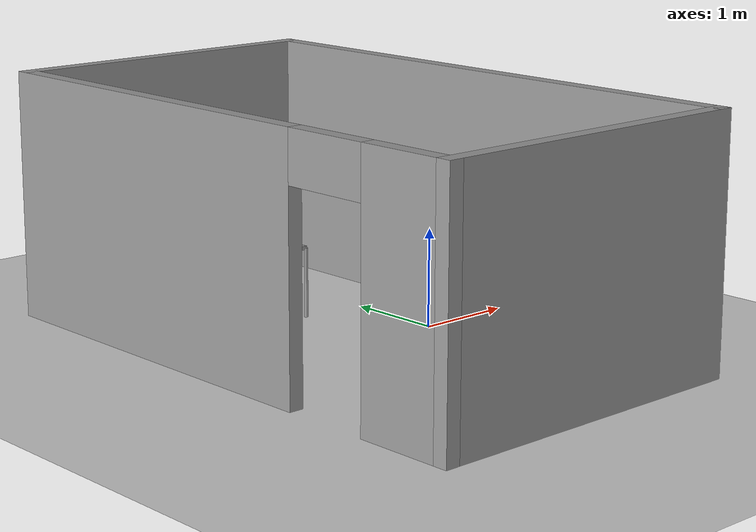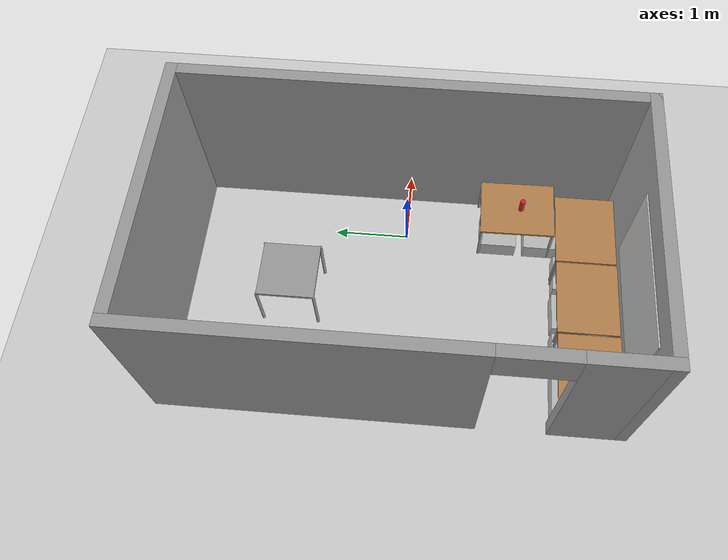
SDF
<sdf version="1.7">
 <world name="default">
  <light name="sun" type="directional">
   <pose>0 0 10 0 -0 0</pose>
   <diffuse>0.8 0.8 0.8 1</diffuse>
   <specular>0.2 0.2 0.2 1</specular>
   <attenuation>
    <range>1000</range>
    <constant>0.9</constant>
    <linear>0.01</linear>
    <quadratic>0.001</quadratic>
   </attenuation>
   <direction>-0.5 0.1 -0.9</direction>
   <spot><inner_angle>0</inner_angle><outer_angle>0</outer_angle><falloff>0</falloff></spot>
  </light>
  <model name="ground_plane">
   <static>1</static>
   <link name="link">
    <collision name="collision">
     <geometry><plane><normal>0 0 1</normal><size>100 100</size></plane></geometry>
     <surface>
      <contact><collide_bitmask>65535</collide_bitmask></contact>
      <friction><ode><mu>100</mu><mu2>50</mu2></ode></friction>
     </surface>
    </collision>
    <visual name="visual">
     <cast_shadows>0</cast_shadows>
     <geometry><plane><normal>0 0 1</normal><size>100 100</size></plane></geometry>
     <material>
      <script><uri>file://media/materials/scripts/gazebo.material</uri><name>Gazebo/Grey</name></script>
     </material>
    </visual>
   </link>
  </model>
  <gravity>0 0 -9.8</gravity>
  <magnetic_field>6e-06 2.3e-05 -4.2e-05</magnetic_field>
  <atmosphere type="adiabatic"/>
  <physics type="ode">
   <max_step_size>0.001</max_step_size>
   <real_time_factor>1</real_time_factor>
   <real_time_update_rate>1000</real_time_update_rate>
  </physics>
  <scene><ambient>0.4 0.4 0.4 1</ambient><background>0.7 0.7 0.7 1</background><shadows>1</shadows></scene>
  <spherical_coordinates>
   <surface_model>EARTH_WGS84</surface_model>
   <latitude_deg>0</latitude_deg>
   <longitude_deg>0</longitude_deg>
   <elevation>0</elevation>
   <heading_deg>0</heading_deg>
  </spherical_coordinates>
  <model name="contour_labo_3it_0">
   <pose>-0.967791 0.026787 0 0 -0 0</pose>
   <link name="Wall_52">
    <collision name="Wall_52_Collision">
     <geometry><box><size>3.5 0.15 2.5</size></box></geometry>
     <pose>0 0 1.25 0 -0 0</pose>
    </collision>
    <visual name="Wall_52_Visual">
     <pose>0 0 1.25 0 -0 0</pose>
     <geometry><box><size>3.5 0.15 2.5</size></box></geometry>
     <material>
      <script><uri>file://media/materials/scripts/gazebo.material</uri><name>Gazebo/Grey</name></script>
      <ambient>1 1 1 1</ambient>
     </material>
     <meta><layer>0</layer></meta>
    </visual>
    <pose>0 -2.925 0 0 -0 3.14159</pose>
   </link>
   <link name="Wall_53">
    <pose>-1.675 0 0 0 -0 1.5708</pose>
    <visual name="Wall_53_Visual_0">
     <pose>-2.49728 0 1.25 0 -0 0</pose>
     <geometry><box><size>1.00545 0.15 2.5</size></box></geometry>
     <material>
      <script><uri>file://media/materials/scripts/gazebo.material</uri><name>Gazebo/Grey</name></script>
      <ambient>1 1 1 1</ambient>
     </material>
     <meta><layer>0</layer></meta>
    </visual>
    <collision name="Wall_53_Collision_0">
     <geometry><box><size>1.00545 0.15 2.5</size></box></geometry>
     <pose>-2.49728 0 1.25 0 -0 0</pose>
    </collision>
    <visual name="Wall_53_Visual_1">
     <pose>0.952724 0 1.25 0 -0 0</pose>
     <geometry><box><size>4.09455 0.15 2.5</size></box></geometry>
     <material>
      <script><uri>file://media/materials/scripts/gazebo.material</uri><name>Gazebo/Grey</name></script>
      <ambient>1 1 1 1</ambient>
     </material>
     <meta><layer>0</layer></meta>
    </visual>
    <collision name="Wall_53_Collision_1">
     <geometry><box><size>4.09455 0.15 2.5</size></box></geometry>
     <pose>0.952724 0 1.25 0 -0 0</pose>
    </collision>
    <visual name="Wall_53_Visual_2">
     <pose>-1.54455 0 2.25 0 -0 0</pose>
     <geometry><box><size>0.9 0.15 0.5</size></box></geometry>
     <material>
      <script><uri>file://media/materials/scripts/gazebo.material</uri><name>Gazebo/Grey</name></script>
      <ambient>1 1 1 1</ambient>
     </material>
     <meta><layer>0</layer></meta>
    </visual>
    <collision name="Wall_53_Collision_2">
     <geometry><box><size>0.9 0.15 0.5</size></box></geometry>
     <pose>-1.54455 0 2.25 0 -0 0</pose>
    </collision>
   </link>
   <link name="Wall_54">
    <collision name="Wall_54_Collision">
     <geometry><box><size>3.5 0.15 2.5</size></box></geometry>
     <pose>0 0 1.25 0 -0 0</pose>
    </collision>
    <visual name="Wall_54_Visual">
     <pose>0 0 1.25 0 -0 0</pose>
     <geometry><box><size>3.5 0.15 2.5</size></box></geometry>
     <material>
      <script><uri>file://media/materials/scripts/gazebo.material</uri><name>Gazebo/Grey</name></script>
      <ambient>1 1 1 1</ambient>
     </material>
     <meta><layer>0</layer></meta>
    </visual>
    <pose>0 2.925 0 0 -0 0</pose>
   </link>
   <link name="Wall_55">
    <collision name="Wall_55_Collision">
     <geometry><box><size>6 0.15 2.5</size></box></geometry>
     <pose>0 0 1.25 0 -0 0</pose>
    </collision>
    <visual name="Wall_55_Visual">
     <pose>0 0 1.25 0 -0 0</pose>
     <geometry><box><size>6 0.15 2.5</size></box></geometry>
     <material>
      <script><uri>file://media/materials/scripts/gazebo.material</uri><name>Gazebo/Grey</name></script>
      <ambient>1 1 1 1</ambient>
     </material>
     <meta><layer>0</layer></meta>
    </visual>
    <pose>1.675 0 0 0 -0 -1.5708</pose>
   </link>
   <static>1</static>
  </model>
  <model name="table_0">
   <static>1</static>
   <link name="link">
    <collision name="surface">
     <pose>0 0 0.6 0 -0 0</pose>
     <geometry><box><size>1 0.8 0.03</size></box></geometry>
    </collision>
    <visual name="visual1">
     <pose>0 0 0.6 0 -0 0</pose>
     <geometry><box><size>1 0.8 0.03</size></box></geometry>
     <material>
      <script><uri>file://media/materials/scripts/gazebo.material</uri><name>Gazebo/Wood</name></script>
     </material>
    </visual>
    <collision name="front_left_leg">
     <pose>0.48 0.38 0.3 0 -0 0</pose>
     <geometry><cylinder><radius>0.02</radius><length>0.6</length></cylinder></geometry>
    </collision>
    <visual name="front_left_leg">
     <pose>0.48 0.38 0.3 0 -0 0</pose>
     <geometry><cylinder><radius>0.02</radius><length>0.6</length></cylinder></geometry>
     <material>
      <script><uri>file://media/materials/scripts/gazebo.material</uri><name>Gazebo/Grey</name></script>
     </material>
    </visual>
    <collision name="front_right_leg">
     <pose>0.48 -0.38 0.3 0 -0 0</pose>
     <geometry><cylinder><radius>0.02</radius><length>0.6</length></cylinder></geometry>
    </collision>
    <visual name="front_right_leg">
     <pose>0.48 -0.38 0.3 0 -0 0</pose>
     <geometry><cylinder><radius>0.02</radius><length>0.6</length></cylinder></geometry>
     <material>
      <script><uri>file://media/materials/scripts/gazebo.material</uri><name>Gazebo/Grey</name></script>
     </material>
    </visual>
    <collision name="back_right_leg">
     <pose>-0.48 -0.38 0.3 0 -0 0</pose>
     <geometry><cylinder><radius>0.02</radius><length>0.6</length></cylinder></geometry>
    </collision>
    <visual name="back_right_leg">
     <pose>-0.48 -0.38 0.3 0 -0 0</pose>
     <geometry><cylinder><radius>0.02</radius><length>0.6</length></cylinder></geometry>
     <material>
      <script><uri>file://media/materials/scripts/gazebo.material</uri><name>Gazebo/Grey</name></script>
     </material>
    </visual>
    <collision name="back_left_leg">
     <pose>-0.48 0.38 0.3 0 -0 0</pose>
     <geometry><cylinder><radius>0.02</radius><length>0.6</length></cylinder></geometry>
    </collision>
    <visual name="back_left_leg">
     <pose>-0.48 0.38 0.3 0 -0 0</pose>
     <geometry><cylinder><radius>0.02</radius><length>0.6</length></cylinder></geometry>
     <material>
      <script><uri>file://media/materials/scripts/gazebo.material</uri><name>Gazebo/Grey</name></script>
     </material>
    </visual>
    <velocity_decay><linear>0</linear><angular>0</angular></velocity_decay>
   </link>
   <pose>-2.08712 -2.42518 0 0 -0 0</pose>
  </model>
  <model name="table_1">
   <static>1</static>
   <link name="link">
    <collision name="surface">
     <pose>0 0 0.6 0 -0 0</pose>
     <geometry><box><size>1 0.8 0.03</size></box></geometry>
    </collision>
    <visual name="visual1">
     <pose>0 0 0.6 0 -0 0</pose>
     <geometry><box><size>1 0.8 0.03</size></box></geometry>
     <material>
      <script><uri>file://media/materials/scripts/gazebo.material</uri><name>Gazebo/Wood</name></script>
     </material>
    </visual>
    <collision name="front_left_leg">
     <pose>0.48 0.38 0.3 0 -0 0</pose>
     <geometry><cylinder><radius>0.02</radius><length>0.6</length></cylinder></geometry>
    </collision>
    <visual name="front_left_leg">
     <pose>0.48 0.38 0.3 0 -0 0</pose>
     <geometry><cylinder><radius>0.02</radius><length>0.6</length></cylinder></geometry>
     <material>
      <script><uri>file://media/materials/scripts/gazebo.material</uri><name>Gazebo/Grey</name></script>
     </material>
    </visual>
    <collision name="front_right_leg">
     <pose>0.48 -0.38 0.3 0 -0 0</pose>
     <geometry><cylinder><radius>0.02</radius><length>0.6</length></cylinder></geometry>
    </collision>
    <visual name="front_right_leg">
     <pose>0.48 -0.38 0.3 0 -0 0</pose>
     <geometry><cylinder><radius>0.02</radius><length>0.6</length></cylinder></geometry>
     <material>
      <script><uri>file://media/materials/scripts/gazebo.material</uri><name>Gazebo/Grey</name></script>
     </material>
    </visual>
    <collision name="back_right_leg">
     <pose>-0.48 -0.38 0.3 0 -0 0</pose>
     <geometry><cylinder><radius>0.02</radius><length>0.6</length></cylinder></geometry>
    </collision>
    <visual name="back_right_leg">
     <pose>-0.48 -0.38 0.3 0 -0 0</pose>
     <geometry><cylinder><radius>0.02</radius><length>0.6</length></cylinder></geometry>
     <material>
      <script><uri>file://media/materials/scripts/gazebo.material</uri><name>Gazebo/Grey</name></script>
     </material>
    </visual>
    <collision name="back_left_leg">
     <pose>-0.48 0.38 0.3 0 -0 0</pose>
     <geometry><cylinder><radius>0.02</radius><length>0.6</length></cylinder></geometry>
    </collision>
    <visual name="back_left_leg">
     <pose>-0.48 0.38 0.3 0 -0 0</pose>
     <geometry><cylinder><radius>0.02</radius><length>0.6</length></cylinder></geometry>
     <material>
      <script><uri>file://media/materials/scripts/gazebo.material</uri><name>Gazebo/Grey</name></script>
     </material>
    </visual>
    <velocity_decay><linear>0</linear><angular>0</angular></velocity_decay>
   </link>
   <pose>-1.06662 -2.41947 0 0 -0 0</pose>
  </model>
  <model name="table_2">
   <static>1</static>
   <link name="link">
    <collision name="surface">
     <pose>0 0 0.6 0 -0 0</pose>
     <geometry><box><size>1 0.8 0.03</size></box></geometry>
    </collision>
    <visual name="visual1">
     <pose>0 0 0.6 0 -0 0</pose>
     <geometry><box><size>1 0.8 0.03</size></box></geometry>
     <material>
      <script><uri>file://media/materials/scripts/gazebo.material</uri><name>Gazebo/Wood</name></script>
     </material>
    </visual>
    <collision name="front_left_leg">
     <pose>0.48 0.38 0.3 0 -0 0</pose>
     <geometry><cylinder><radius>0.02</radius><length>0.6</length></cylinder></geometry>
    </collision>
    <visual name="front_left_leg">
     <pose>0.48 0.38 0.3 0 -0 0</pose>
     <geometry><cylinder><radius>0.02</radius><length>0.6</length></cylinder></geometry>
     <material>
      <script><uri>file://media/materials/scripts/gazebo.material</uri><name>Gazebo/Grey</name></script>
     </material>
    </visual>
    <collision name="front_right_leg">
     <pose>0.48 -0.38 0.3 0 -0 0</pose>
     <geometry><cylinder><radius>0.02</radius><length>0.6</length></cylinder></geometry>
    </collision>
    <visual name="front_right_leg">
     <pose>0.48 -0.38 0.3 0 -0 0</pose>
     <geometry><cylinder><radius>0.02</radius><length>0.6</length></cylinder></geometry>
     <material>
      <script><uri>file://media/materials/scripts/gazebo.material</uri><name>Gazebo/Grey</name></script>
     </material>
    </visual>
    <collision name="back_right_leg">
     <pose>-0.48 -0.38 0.3 0 -0 0</pose>
     <geometry><cylinder><radius>0.02</radius><length>0.6</length></cylinder></geometry>
    </collision>
    <visual name="back_right_leg">
     <pose>-0.48 -0.38 0.3 0 -0 0</pose>
     <geometry><cylinder><radius>0.02</radius><length>0.6</length></cylinder></geometry>
     <material>
      <script><uri>file://media/materials/scripts/gazebo.material</uri><name>Gazebo/Grey</name></script>
     </material>
    </visual>
    <collision name="back_left_leg">
     <pose>-0.48 0.38 0.3 0 -0 0</pose>
     <geometry><cylinder><radius>0.02</radius><length>0.6</length></cylinder></geometry>
    </collision>
    <visual name="back_left_leg">
     <pose>-0.48 0.38 0.3 0 -0 0</pose>
     <geometry><cylinder><radius>0.02</radius><length>0.6</length></cylinder></geometry>
     <material>
      <script><uri>file://media/materials/scripts/gazebo.material</uri><name>Gazebo/Grey</name></script>
     </material>
    </visual>
    <velocity_decay><linear>0</linear><angular>0</angular></velocity_decay>
   </link>
   <pose>-0.048389 -2.41485 0 0 -0 0</pose>
  </model>
  <model name="table_3">
   <static>1</static>
   <link name="link">
    <collision name="surface">
     <pose>0 0 0.6 0 -0 0</pose>
     <geometry><box><size>1 0.8 0.03</size></box></geometry>
    </collision>
    <visual name="visual1">
     <pose>0 0 0.6 0 -0 0</pose>
     <geometry><box><size>1 0.8 0.03</size></box></geometry>
     <material>
      <script><uri>file://media/materials/scripts/gazebo.material</uri><name>Gazebo/Wood</name></script>
     </material>
    </visual>
    <collision name="front_left_leg">
     <pose>0.48 0.38 0.3 0 -0 0</pose>
     <geometry><cylinder><radius>0.02</radius><length>0.6</length></cylinder></geometry>
    </collision>
    <visual name="front_left_leg">
     <pose>0.48 0.38 0.3 0 -0 0</pose>
     <geometry><cylinder><radius>0.02</radius><length>0.6</length></cylinder></geometry>
     <material>
      <script><uri>file://media/materials/scripts/gazebo.material</uri><name>Gazebo/Grey</name></script>
     </material>
    </visual>
    <collision name="front_right_leg">
     <pose>0.48 -0.38 0.3 0 -0 0</pose>
     <geometry><cylinder><radius>0.02</radius><length>0.6</length></cylinder></geometry>
    </collision>
    <visual name="front_right_leg">
     <pose>0.48 -0.38 0.3 0 -0 0</pose>
     <geometry><cylinder><radius>0.02</radius><length>0.6</length></cylinder></geometry>
     <material>
      <script><uri>file://media/materials/scripts/gazebo.material</uri><name>Gazebo/Grey</name></script>
     </material>
    </visual>
    <collision name="back_right_leg">
     <pose>-0.48 -0.38 0.3 0 -0 0</pose>
     <geometry><cylinder><radius>0.02</radius><length>0.6</length></cylinder></geometry>
    </collision>
    <visual name="back_right_leg">
     <pose>-0.48 -0.38 0.3 0 -0 0</pose>
     <geometry><cylinder><radius>0.02</radius><length>0.6</length></cylinder></geometry>
     <material>
      <script><uri>file://media/materials/scripts/gazebo.material</uri><name>Gazebo/Grey</name></script>
     </material>
    </visual>
    <collision name="back_left_leg">
     <pose>-0.48 0.38 0.3 0 -0 0</pose>
     <geometry><cylinder><radius>0.02</radius><length>0.6</length></cylinder></geometry>
    </collision>
    <visual name="back_left_leg">
     <pose>-0.48 0.38 0.3 0 -0 0</pose>
     <geometry><cylinder><radius>0.02</radius><length>0.6</length></cylinder></geometry>
     <material>
      <script><uri>file://media/materials/scripts/gazebo.material</uri><name>Gazebo/Grey</name></script>
     </material>
    </visual>
    <velocity_decay><linear>0</linear><angular>0</angular></velocity_decay>
   </link>
   <pose>0.220447 -1.50124 0 0 0 -1.56027</pose>
  </model>
  <model name="aruco_board">
   <static>1</static>
   <link name="marker">
    <visual name="visual">
     <geometry><box><size>0.02 1.9 1.3</size></box></geometry>
     <material>
      <script>
       <uri>model://aruco_board/material/scripts</uri>
       <uri>model://aruco_board/material/textures</uri>
       <name>Aruco/aruco_board</name>
      </script>
     </material>
    </visual>
    <gravity>0</gravity>
   </link>
   <pose>-1.40969 -2.79162 1.54087 0 0 -1.57057</pose>
  </model>
  <model name="custom_object">
   <static>0</static>
   <link name="link">
    <inertial>
     <mass>0.25</mass>
     <inertia>
      <ixx>4.1667e-05</ixx>
      <ixy>0</ixy>
      <ixz>0</ixz>
      <iyy>4.1667e-05</iyy>
      <iyz>0</iyz>
      <izz>4.1667e-05</izz>
     </inertia>
    </inertial>
    <visual name="visual"><geometry><box><size>0.5 0.5 0.5</size></box></geometry></visual>
    <collision name="collision"><geometry><box><size>0.5 0.5 0.5</size></box></geometry></collision>
   </link>
   <pose>0.078313 -1.27771 0 0 -0 0</pose>
  </model>
  <model name="custom_object_0">
   <static>0</static>
   <link name="link">
    <inertial>
     <mass>0.25</mass>
     <inertia>
      <ixx>4.1667e-05</ixx>
      <ixy>0</ixy>
      <ixz>0</ixz>
      <iyy>4.1667e-05</iyy>
      <iyz>0</iyz>
      <izz>4.1667e-05</izz>
     </inertia>
    </inertial>
    <visual name="visual"><geometry><box><size>0.5 0.5 0.5</size></box></geometry></visual>
    <collision name="collision"><geometry><box><size>0.5 0.5 0.5</size></box></geometry></collision>
   </link>
   <pose>0.078042 -1.88681 0 0 -0 0</pose>
  </model>
  <model name="custom_object_1">
   <static>0</static>
   <link name="link">
    <inertial>
     <mass>0.25</mass>
     <inertia>
      <ixx>4.1667e-05</ixx>
      <ixy>0</ixy>
      <ixz>0</ixz>
      <iyy>4.1667e-05</iyy>
      <iyz>0</iyz>
      <izz>4.1667e-05</izz>
     </inertia>
    </inertial>
    <visual name="visual"><geometry><box><size>0.5 0.5 0.5</size></box></geometry></visual>
    <collision name="collision"><geometry><box><size>0.5 0.5 0.5</size></box></geometry></collision>
   </link>
   <pose>-0.535164 -2.28506 -0 0 -0 0</pose>
  </model>
  <model name="custom_object_2">
   <static>0</static>
   <link name="link">
    <inertial>
     <mass>0.25</mass>
     <inertia>
      <ixx>4.1667e-05</ixx>
      <ixy>0</ixy>
      <ixz>0</ixz>
      <iyy>4.1667e-05</iyy>
      <iyz>0</iyz>
      <izz>4.1667e-05</izz>
     </inertia>
    </inertial>
    <visual name="visual"><geometry><box><size>0.5 0.5 0.5</size></box></geometry></visual>
    <collision name="collision"><geometry><box><size>0.5 0.5 0.5</size></box></geometry></collision>
   </link>
   <pose>-1.11605 -2.26112 0 0 -0 0</pose>
  </model>
  <model name="custom_object_3">
   <static>0</static>
   <link name="link">
    <inertial>
     <mass>0.25</mass>
     <inertia>
      <ixx>4.1667e-05</ixx>
      <ixy>0</ixy>
      <ixz>0</ixz>
      <iyy>4.1667e-05</iyy>
      <iyz>0</iyz>
      <izz>4.1667e-05</izz>
     </inertia>
    </inertial>
    <visual name="visual"><geometry><box><size>0.5 0.5 0.5</size></box></geometry></visual>
    <collision name="collision"><geometry><box><size>0.5 0.5 0.5</size></box></geometry></collision>
   </link>
   <pose>-1.68905 -2.25766 0 0 -0 0</pose>
  </model>
  <model name="custom_object_4">
   <static>0</static>
   <link name="link">
    <inertial>
     <mass>0.25</mass>
     <inertia>
      <ixx>4.1667e-05</ixx>
      <ixy>0</ixy>
      <ixz>0</ixz>
      <iyy>4.1667e-05</iyy>
      <iyz>0</iyz>
      <izz>4.1667e-05</izz>
     </inertia>
    </inertial>
    <visual name="visual"><geometry><box><size>0.5 0.5 0.5</size></box></geometry></visual>
    <collision name="collision"><geometry><box><size>0.5 0.5 0.5</size></box></geometry></collision>
   </link>
   <pose>-2.25912 -2.25156 0 0 -0 0</pose>
  </model>
  <model name="table_4">
   <static>1</static>
   <link name="link">
    <collision name="surface">
     <pose>0 0 0.72 0 -0 0</pose>
     <geometry><box><size>0.75 0.75 0.04</size></box></geometry>
    </collision>
    <visual name="visual1">
     <pose>0 0 0.72 0 -0 0</pose>
     <geometry><box><size>0.75 0.75 0.04</size></box></geometry>
     <material>
      <script><uri>file://media/materials/scripts/gazebo.material</uri><name>Gazebo/Grey</name></script>
     </material>
    </visual>
    <collision name="front_left_leg">
     <pose>0.37 0.37 0.36 0 -0 0</pose>
     <geometry><cylinder><radius>0.02</radius><length>0.72</length></cylinder></geometry>
    </collision>
    <visual name="front_left_leg">
     <pose>0.37 0.37 0.36 0 -0 0</pose>
     <geometry><cylinder><radius>0.02</radius><length>0.72</length></cylinder></geometry>
     <material>
      <script><uri>file://media/materials/scripts/gazebo.material</uri><name>Gazebo/Grey</name></script>
     </material>
    </visual>
    <collision name="front_right_leg">
     <pose>0.37 -0.37 0.36 0 -0 0</pose>
     <geometry><cylinder><radius>0.02</radius><length>0.72</length></cylinder></geometry>
    </collision>
    <visual name="front_right_leg">
     <pose>0.37 -0.37 0.36 0 -0 0</pose>
     <geometry><cylinder><radius>0.02</radius><length>0.72</length></cylinder></geometry>
     <material>
      <script><uri>file://media/materials/scripts/gazebo.material</uri><name>Gazebo/Grey</name></script>
     </material>
    </visual>
    <collision name="back_right_leg">
     <pose>-0.37 -0.37 0.36 0 -0 0</pose>
     <geometry><cylinder><radius>0.02</radius><length>0.72</length></cylinder></geometry>
    </collision>
    <visual name="back_right_leg">
     <pose>-0.37 -0.37 0.36 0 -0 0</pose>
     <geometry><cylinder><radius>0.02</radius><length>0.72</length></cylinder></geometry>
     <material>
      <script><uri>file://media/materials/scripts/gazebo.material</uri><name>Gazebo/Grey</name></script>
     </material>
    </visual>
    <collision name="back_left_leg">
     <pose>-0.37 0.37 0.36 0 -0 0</pose>
     <geometry><cylinder><radius>0.02</radius><length>0.72</length></cylinder></geometry>
    </collision>
    <visual name="back_left_leg">
     <pose>-0.37 0.37 0.36 0 -0 0</pose>
     <geometry><cylinder><radius>0.02</radius><length>0.72</length></cylinder></geometry>
     <material>
      <script><uri>file://media/materials/scripts/gazebo.material</uri><name>Gazebo/Grey</name></script>
     </material>
    </visual>
    <velocity_decay><linear>0</linear><angular>0</angular></velocity_decay>
   </link>
   <pose>-1.03071 1.46381 -0 0 -0 0</pose>
  </model>
  <model name="small_cylinder">
   <link name="link">
    <gravity>0</gravity>
    <pose>0 0 0.1 0 -0 0</pose>
    <inertial>
     <mass>1</mass>
     <inertia>
      <ixx>0.000363958</ixx>
      <ixy>0</ixy>
      <ixz>0</ixz>
      <iyy>0.000363958</iyy>
      <iyz>0</iyz>
      <izz>0.0006125</izz>
     </inertia>
    </inertial>
    <visual name="visual">
     <geometry><cylinder><radius>0.035</radius><length>0.2</length></cylinder></geometry>
     <material>
      <script><uri>file://media/materials/scripts/gazebo.material</uri><name>Gazebo/Red</name></script>
     </material>
    </visual>
    <collision name="collision">
     <geometry><cylinder><radius>0.035</radius><length>0.2</length></cylinder></geometry>
     <surface><friction><ode><mu>0</mu><mu2>0</mu2></ode></friction></surface>
    </collision>
   </link>
   <pose>0.209727 -1.55173 0.619608 0 -0 0</pose>
  </model>
  <model name="sprite">
   <static>0</static>
   <link name="link">
    <inertial>
     <mass>0.25</mass>
     <inertia><ixx>0</ixx><ixy>0</ixy><ixz>0</ixz><iyy>0</iyy><iyz>0</iyz><izz>0</izz></inertia>
    </inertial>
    <collision name="collision">
     <pose>0 0 0.075 -3.14159 -0 0</pose>
     <geometry><cylinder><radius>0.04</radius><length>0.15</length></cylinder></geometry>
    </collision>
    <visual name="visual">
     <pose>0 0 0.075 -3.14159 -0 0</pose>
     <geometry><cylinder><radius>0.04</radius><length>0.15</length></cylinder></geometry>
     <material>
      <script>
       <uri>model://sprite/material/scripts</uri>
       <uri>model://sprite/material/textures</uri>
       <name>Custom/sprite</name>
      </script>
     </material>
    </visual>
    <velocity_decay><linear>0</linear><angular>0</angular></velocity_decay>
   </link>
   <pose>-2.03227 -2.42521 0.612434 0 -0 0</pose>
  </model>
 </world>
</sdf>
